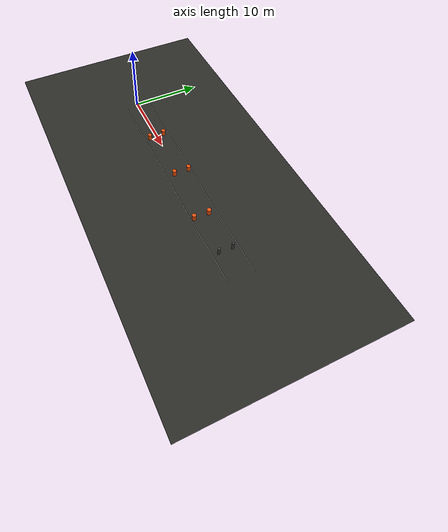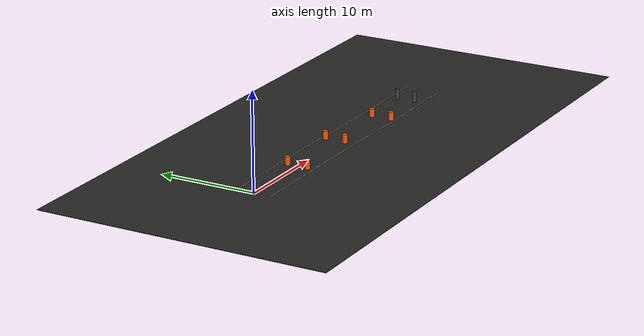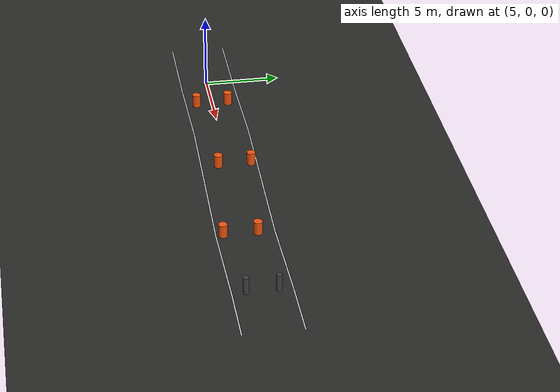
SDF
<sdf version="1.9">
 <world name="igvc_competition">
  <plugin filename="ignition-gazebo-physics-system" name="ignition::gazebo::systems::Physics"/>
  <plugin filename="ignition-gazebo-user-commands-system" name="ignition::gazebo::systems::UserCommands"/>
  <plugin filename="ignition-gazebo-scene-broadcaster-system" name="ignition::gazebo::systems::SceneBroadcaster"/>
  <plugin filename="ignition-gazebo-sensors-system" name="ignition::gazebo::systems::Sensors">
   <render_engine>ogre2</render_engine>
  </plugin>
  <light name="sun" type="directional">
   <pose>0 0 20 0 0 0</pose>
   <diffuse>0.8 0.8 0.75 1</diffuse>
   <specular>0.2 0.2 0.2 1</specular>
   <direction>-0.35 0.15 -0.92</direction>
  </light>
  <gravity>0 0 -9.80665</gravity>
  <magnetic_field>6e-06 2.3e-05 -4.2e-05</magnetic_field>
  <atmosphere type="adiabatic"/>
  <physics name="default_physics" type="ode">
   <max_step_size>0.010</max_step_size>
   <real_time_factor>1.0</real_time_factor>
   <real_time_update_rate>100</real_time_update_rate>
  </physics>
  <scene>
   <ambient>0.45 0.45 0.45 1</ambient>
   <background>0.70 0.72 0.75 1</background>
   <shadows>true</shadows>
  </scene>
  <spherical_coordinates>
   <surface_model>EARTH_WGS84</surface_model>
   <latitude_deg>37.23027000</latitude_deg>
   <longitude_deg>-80.42504000</longitude_deg>
   <elevation>650.000</elevation>
   <heading_deg>0</heading_deg>
  </spherical_coordinates>
  <model name="asphalt_ground">
   <static>1</static>
   <pose>17.0000 0.0000 -0.0250 0.000000 0.000000 0.000000</pose>
   <link name="link">
    <collision name="collision"><geometry><box><size>60.0000 30.0000 0.0500</size></box></geometry></collision>
    <visual name="visual">
     <geometry><box><size>60.0000 30.0000 0.0500</size></box></geometry>
     <material>
      <ambient>0.16 0.16 0.15 1.0</ambient>
      <diffuse>0.16 0.16 0.15 1.0</diffuse>
      <specular>0.05 0.05 0.05 1</specular>
     </material>
    </visual>
   </link>
  </model>
  <model name="left_boundary_0">
   <static>1</static>
   <pose>2.9924 1.8288 0.011 0 0 -0.000011</pose>
   <link name="link">
    <visual name="visual">
     <geometry><box><size>5.9848 0.0762 0.012</size></box></geometry>
     <material>
      <ambient>0.98 0.98 0.98 1</ambient>
      <diffuse>0.98 0.98 0.98 1</diffuse>
      <specular>0.05 0.05 0.05 1</specular>
      <emissive>0.9 0.9 0.9 1</emissive>
     </material>
    </visual>
   </link>
  </model>
  <model name="right_boundary_0">
   <static>1</static>
   <pose>3.0076 -1.8288 0.011 0 0 0.000011</pose>
   <link name="link">
    <visual name="visual">
     <geometry><box><size>6.0152 0.0762 0.012</size></box></geometry>
     <material>
      <ambient>0.98 0.98 0.98 1</ambient>
      <diffuse>0.98 0.98 0.98 1</diffuse>
      <specular>0.05 0.05 0.05 1</specular>
      <emissive>0.9 0.9 0.9 1</emissive>
     </material>
    </visual>
   </link>
  </model>
  <model name="left_boundary_1">
   <static>1</static>
   <pose>8.9924 1.8788 0.011 0 0 0.016633</pose>
   <link name="link">
    <visual name="visual">
     <geometry><box><size>6.0161 0.0762 0.012</size></box></geometry>
     <material>
      <ambient>0.98 0.98 0.98 1</ambient>
      <diffuse>0.98 0.98 0.98 1</diffuse>
      <specular>0.05 0.05 0.05 1</specular>
      <emissive>0.9 0.9 0.9 1</emissive>
     </material>
    </visual>
   </link>
  </model>
  <model name="right_boundary_1">
   <static>1</static>
   <pose>9.0076 -1.7788 0.011 0 0 0.016697</pose>
   <link name="link">
    <visual name="visual">
     <geometry><box><size>5.9856 0.0762 0.012</size></box></geometry>
     <material>
      <ambient>0.98 0.98 0.98 1</ambient>
      <diffuse>0.98 0.98 0.98 1</diffuse>
      <specular>0.05 0.05 0.05 1</specular>
      <emissive>0.9 0.9 0.9 1</emissive>
     </material>
    </visual>
   </link>
  </model>
  <model name="left_boundary_2">
   <static>1</static>
   <pose>15.0152 1.8787 0.011 0 0 -0.016623</pose>
   <link name="link">
    <visual name="visual">
     <geometry><box><size>6.0313 0.0762 0.012</size></box></geometry>
     <material>
      <ambient>0.98 0.98 0.98 1</ambient>
      <diffuse>0.98 0.98 0.98 1</diffuse>
      <specular>0.05 0.05 0.05 1</specular>
      <emissive>0.9 0.9 0.9 1</emissive>
     </material>
    </visual>
   </link>
  </model>
  <model name="right_boundary_2">
   <static>1</static>
   <pose>14.9848 -1.7787 0.011 0 0 -0.016708</pose>
   <link name="link">
    <visual name="visual">
     <geometry><box><size>5.9704 0.0762 0.012</size></box></geometry>
     <material>
      <ambient>0.98 0.98 0.98 1</ambient>
      <diffuse>0.98 0.98 0.98 1</diffuse>
      <specular>0.05 0.05 0.05 1</specular>
      <emissive>0.9 0.9 0.9 1</emissive>
     </material>
    </visual>
   </link>
  </model>
  <model name="left_boundary_3">
   <static>1</static>
   <pose>21.0152 1.7787 0.011 0 0 -0.016708</pose>
   <link name="link">
    <visual name="visual">
     <geometry><box><size>5.9704 0.0762 0.012</size></box></geometry>
     <material>
      <ambient>0.98 0.98 0.98 1</ambient>
      <diffuse>0.98 0.98 0.98 1</diffuse>
      <specular>0.05 0.05 0.05 1</specular>
      <emissive>0.9 0.9 0.9 1</emissive>
     </material>
    </visual>
   </link>
  </model>
  <model name="right_boundary_3">
   <static>1</static>
   <pose>20.9848 -1.8787 0.011 0 0 -0.016623</pose>
   <link name="link">
    <visual name="visual">
     <geometry><box><size>6.0313 0.0762 0.012</size></box></geometry>
     <material>
      <ambient>0.98 0.98 0.98 1</ambient>
      <diffuse>0.98 0.98 0.98 1</diffuse>
      <specular>0.05 0.05 0.05 1</specular>
      <emissive>0.9 0.9 0.9 1</emissive>
     </material>
    </visual>
   </link>
  </model>
  <model name="left_boundary_4">
   <static>1</static>
   <pose>26.9909 1.7788 0.011 0 0 0.016701</pose>
   <link name="link">
    <visual name="visual">
     <geometry><box><size>5.9825 0.0762 0.012</size></box></geometry>
     <material>
      <ambient>0.98 0.98 0.98 1</ambient>
      <diffuse>0.98 0.98 0.98 1</diffuse>
      <specular>0.05 0.05 0.05 1</specular>
      <emissive>0.9 0.9 0.9 1</emissive>
     </material>
    </visual>
   </link>
  </model>
  <model name="right_boundary_4">
   <static>1</static>
   <pose>27.0091 -1.8788 0.011 0 0 0.016630</pose>
   <link name="link">
    <visual name="visual">
     <geometry><box><size>6.0191 0.0762 0.012</size></box></geometry>
     <material>
      <ambient>0.98 0.98 0.98 1</ambient>
      <diffuse>0.98 0.98 0.98 1</diffuse>
      <specular>0.05 0.05 0.05 1</specular>
      <emissive>0.9 0.9 0.9 1</emissive>
     </material>
    </visual>
   </link>
  </model>
  <model name="left_boundary_5">
   <static>1</static>
   <pose>31.9909 1.8288 0.011 0 0 0.000023</pose>
   <link name="link">
    <visual name="visual">
     <geometry><box><size>4.0183 0.0762 0.012</size></box></geometry>
     <material>
      <ambient>0.98 0.98 0.98 1</ambient>
      <diffuse>0.98 0.98 0.98 1</diffuse>
      <specular>0.05 0.05 0.05 1</specular>
      <emissive>0.9 0.9 0.9 1</emissive>
     </material>
    </visual>
   </link>
  </model>
  <model name="right_boundary_5">
   <static>1</static>
   <pose>32.0091 -1.8288 0.011 0 0 -0.000023</pose>
   <link name="link">
    <visual name="visual">
     <geometry><box><size>3.9817 0.0762 0.012</size></box></geometry>
     <material>
      <ambient>0.98 0.98 0.98 1</ambient>
      <diffuse>0.98 0.98 0.98 1</diffuse>
      <specular>0.05 0.05 0.05 1</specular>
      <emissive>0.9 0.9 0.9 1</emissive>
     </material>
    </visual>
   </link>
  </model>
  <model name="gap1_left">
   <static>1</static>
   <pose>8.0000 1.0800 0 0 0 0</pose>
   <link name="link">
    <collision name="collision">
     <pose>0 0 0.4250 0 0 0</pose>
     <geometry><cylinder><radius>0.2800</radius><length>0.8500</length></cylinder></geometry>
    </collision>
    <visual name="visual">
     <pose>0 0 0.4250 0 0 0</pose>
     <geometry><cylinder><radius>0.2800</radius><length>0.8500</length></cylinder></geometry>
     <material>
      <ambient>0.95 0.32 0.05 1.0</ambient>
      <diffuse>0.95 0.32 0.05 1.0</diffuse>
      <specular>0.05 0.05 0.05 1</specular>
     </material>
    </visual>
   </link>
  </model>
  <model name="gap1_right">
   <static>1</static>
   <pose>8.0000 -1.0800 0 0 0 0</pose>
   <link name="link">
    <collision name="collision">
     <pose>0 0 0.4250 0 0 0</pose>
     <geometry><cylinder><radius>0.2800</radius><length>0.8500</length></cylinder></geometry>
    </collision>
    <visual name="visual">
     <pose>0 0 0.4250 0 0 0</pose>
     <geometry><cylinder><radius>0.2800</radius><length>0.8500</length></cylinder></geometry>
     <material>
      <ambient>0.95 0.32 0.05 1.0</ambient>
      <diffuse>0.95 0.32 0.05 1.0</diffuse>
      <specular>0.05 0.05 0.05 1</specular>
     </material>
    </visual>
   </link>
  </model>
  <model name="gap2_left">
   <static>1</static>
   <pose>16.0000 1.4800 0 0 0 0</pose>
   <link name="link">
    <collision name="collision">
     <pose>0 0 0.4250 0 0 0</pose>
     <geometry><cylinder><radius>0.2800</radius><length>0.8500</length></cylinder></geometry>
    </collision>
    <visual name="visual">
     <pose>0 0 0.4250 0 0 0</pose>
     <geometry><cylinder><radius>0.2800</radius><length>0.8500</length></cylinder></geometry>
     <material>
      <ambient>0.95 0.32 0.05 1.0</ambient>
      <diffuse>0.95 0.32 0.05 1.0</diffuse>
      <specular>0.05 0.05 0.05 1</specular>
     </material>
    </visual>
   </link>
  </model>
  <model name="gap2_right">
   <static>1</static>
   <pose>16.0000 -0.6800 0 0 0 0</pose>
   <link name="link">
    <collision name="collision">
     <pose>0 0 0.4250 0 0 0</pose>
     <geometry><cylinder><radius>0.2800</radius><length>0.8500</length></cylinder></geometry>
    </collision>
    <visual name="visual">
     <pose>0 0 0.4250 0 0 0</pose>
     <geometry><cylinder><radius>0.2800</radius><length>0.8500</length></cylinder></geometry>
     <material>
      <ambient>0.95 0.32 0.05 1.0</ambient>
      <diffuse>0.95 0.32 0.05 1.0</diffuse>
      <specular>0.05 0.05 0.05 1</specular>
     </material>
    </visual>
   </link>
  </model>
  <model name="gap3_left">
   <static>1</static>
   <pose>24.0000 0.6800 0 0 0 0</pose>
   <link name="link">
    <collision name="collision">
     <pose>0 0 0.4250 0 0 0</pose>
     <geometry><cylinder><radius>0.2800</radius><length>0.8500</length></cylinder></geometry>
    </collision>
    <visual name="visual">
     <pose>0 0 0.4250 0 0 0</pose>
     <geometry><cylinder><radius>0.2800</radius><length>0.8500</length></cylinder></geometry>
     <material>
      <ambient>0.95 0.32 0.05 1.0</ambient>
      <diffuse>0.95 0.32 0.05 1.0</diffuse>
      <specular>0.05 0.05 0.05 1</specular>
     </material>
    </visual>
   </link>
  </model>
  <model name="gap3_right">
   <static>1</static>
   <pose>24.0000 -1.4800 0 0 0 0</pose>
   <link name="link">
    <collision name="collision">
     <pose>0 0 0.4250 0 0 0</pose>
     <geometry><cylinder><radius>0.2800</radius><length>0.8500</length></cylinder></geometry>
    </collision>
    <visual name="visual">
     <pose>0 0 0.4250 0 0 0</pose>
     <geometry><cylinder><radius>0.2800</radius><length>0.8500</length></cylinder></geometry>
     <material>
      <ambient>0.95 0.32 0.05 1.0</ambient>
      <diffuse>0.95 0.32 0.05 1.0</diffuse>
      <specular>0.05 0.05 0.05 1</specular>
     </material>
    </visual>
   </link>
  </model>
  <model name="gap4_left">
   <static>1</static>
   <pose>30.0000 0.9800 0 0 0 0</pose>
   <link name="link">
    <collision name="collision">
     <pose>0 0 0.5500 0 0 0</pose>
     <geometry><cylinder><radius>0.1800</radius><length>1.1000</length></cylinder></geometry>
    </collision>
    <visual name="visual">
     <pose>0 0 0.5500 0 0 0</pose>
     <geometry><cylinder><radius>0.1800</radius><length>1.1000</length></cylinder></geometry>
     <material>
      <ambient>0.25 0.25 0.25 1.0</ambient>
      <diffuse>0.25 0.25 0.25 1.0</diffuse>
      <specular>0.05 0.05 0.05 1</specular>
     </material>
    </visual>
   </link>
  </model>
  <model name="gap4_right">
   <static>1</static>
   <pose>30.0000 -0.9800 0 0 0 0</pose>
   <link name="link">
    <collision name="collision">
     <pose>0 0 0.5500 0 0 0</pose>
     <geometry><cylinder><radius>0.1800</radius><length>1.1000</length></cylinder></geometry>
    </collision>
    <visual name="visual">
     <pose>0 0 0.5500 0 0 0</pose>
     <geometry><cylinder><radius>0.1800</radius><length>1.1000</length></cylinder></geometry>
     <material>
      <ambient>0.25 0.25 0.25 1.0</ambient>
      <diffuse>0.25 0.25 0.25 1.0</diffuse>
      <specular>0.05 0.05 0.05 1</specular>
     </material>
    </visual>
   </link>
  </model>
 </world>
</sdf>
